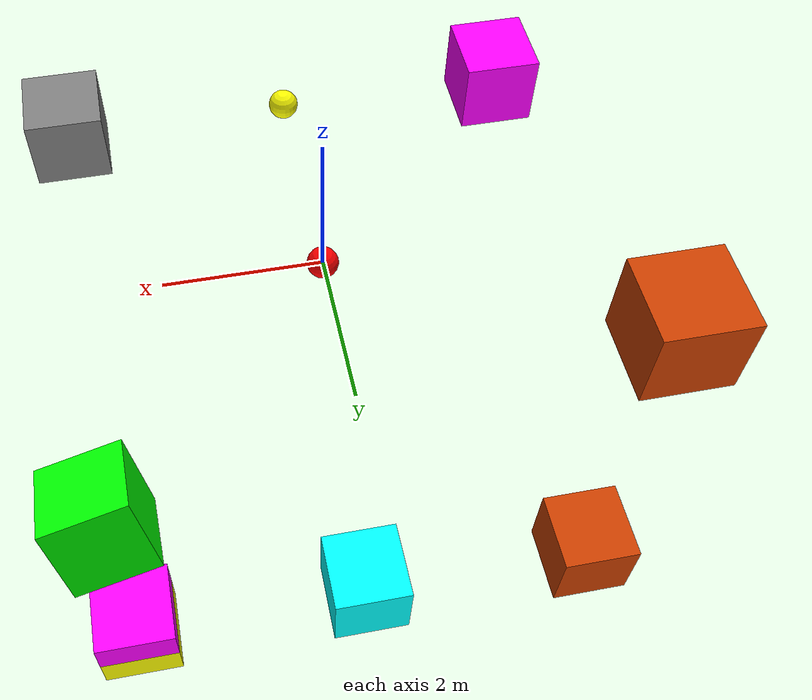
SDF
<sdf version="1.6">
 <world name="buoyancy">
  <physics name="1ms" type="ode">
   <max_step_size>0.001</max_step_size>
   <real_time_factor>1.0</real_time_factor>
  </physics>
  <plugin filename="gz-sim-physics-system" name="gz::sim::systems::Physics"/>
  <plugin filename="gz-sim-user-commands-system" name="gz::sim::systems::UserCommands"/>
  <plugin filename="gz-sim-scene-broadcaster-system" name="gz::sim::systems::SceneBroadcaster"/>
  <scene><ambient>1.0 1.0 1.0</ambient><background>0.8 0.8 0.8</background></scene>
  <light type="directional" name="sun">
   <pose>0 0 10 0 0 0</pose>
   <diffuse>1 1 1 1</diffuse>
   <specular>0.5 0.5 0.5 1</specular>
   <attenuation>
    <range>1000</range>
    <constant>0.9</constant>
    <linear>0.01</linear>
    <quadratic>0.001</quadratic>
   </attenuation>
   <direction>-0.5 0.1 -0.9</direction>
  </light>
  <model name="lighter_than_water">
   <model name="ball">
    <plugin filename="gz-waves1-hydrodynamics-system" name="gz::sim::systems::Hydrodynamics">
     <enable>lighter_than_water::ball</enable>
     <hydrodynamics>
      <damping_on>0</damping_on>
      <viscous_drag_on>0</viscous_drag_on>
      <pressure_drag_on>0</pressure_drag_on>
     </hydrodynamics>
    </plugin>
    <link name="body">
     <inertial>
      <mass>15</mass>
      <inertia><ixx>0.24</ixx><ixy>0</ixy><ixz>0</ixz><iyy>0.24</iyy><iyz>0</iyz><izz>0.24</izz></inertia>
     </inertial>
     <visual name="body_visual">
      <geometry><sphere><radius>0.2</radius></sphere></geometry>
      <material><ambient>1 0 0 1</ambient><diffuse>1 0 0 1</diffuse><specular>0.8 0.8 0.8 1</specular></material>
     </visual>
     <collision name="body_collision"><geometry><sphere><radius>0.2</radius></sphere></geometry></collision>
    </link>
   </model>
   <model name="box">
    <plugin filename="gz-waves1-hydrodynamics-system" name="gz::sim::systems::Hydrodynamics">
     <enable>lighter_than_water::box</enable>
     <hydrodynamics>
      <damping_on>0</damping_on>
      <viscous_drag_on>0</viscous_drag_on>
      <pressure_drag_on>0</pressure_drag_on>
     </hydrodynamics>
    </plugin>
    <pose>3 3 0 0.3 0.2 0.1</pose>
    <link name="body">
     <inertial>
      <mass>200</mass>
      <inertia><ixx>33.33</ixx><ixy>0</ixy><ixz>0</ixz><iyy>33.33</iyy><iyz>0</iyz><izz>33.33</izz></inertia>
     </inertial>
     <visual name="body_visual">
      <geometry><box><size>1 1 1</size></box></geometry>
      <material><ambient>0 1 0 1</ambient><diffuse>0 1 0 1</diffuse><specular>0.8 0.8 0.8 1</specular></material>
     </visual>
     <collision name="body_collision"><geometry><box><size>1 1 1</size></box></geometry></collision>
    </link>
   </model>
  </model>
  <model name="balloon_lighter_than_air">
   <plugin filename="gz-waves1-hydrodynamics-system" name="gz::sim::systems::Hydrodynamics">
    <enable>balloon_lighter_than_air::body</enable>
    <hydrodynamics>
     <damping_on>0</damping_on>
     <viscous_drag_on>0</viscous_drag_on>
     <pressure_drag_on>0</pressure_drag_on>
    </hydrodynamics>
   </plugin>
   <pose>0 -3 -0.1 0 0 0</pose>
   <link name="body">
    <inertial>
     <mass>0.1</mass>
     <inertia><ixx>0.0016</ixx><ixy>0</ixy><ixz>0</ixz><iyy>0.0016</iyy><iyz>0</iyz><izz>0.0016</izz></inertia>
    </inertial>
    <visual name="body_visual">
     <geometry><sphere><radius>0.2</radius></sphere></geometry>
     <material><ambient>1 1 0 1</ambient><diffuse>1 1 0 1</diffuse><specular>0.8 0.8 0.8 1</specular></material>
    </visual>
    <collision name="body_collision"><geometry><sphere><radius>0.2</radius></sphere></geometry></collision>
   </link>
  </model>
  <model name="box_neutral_buoyancy">
   <plugin filename="gz-waves1-hydrodynamics-system" name="gz::sim::systems::Hydrodynamics">
    <enable>box_neutral_buoyancy</enable>
    <hydrodynamics>
     <damping_on>0</damping_on>
     <viscous_drag_on>0</viscous_drag_on>
     <pressure_drag_on>0</pressure_drag_on>
    </hydrodynamics>
   </plugin>
   <pose>0 3 -3 0 0 0</pose>
   <link name="body">
    <inertial>
     <mass>998.6</mass>
     <pose>0 0 -0.1 0 0 0</pose>
     <inertia>
      <ixx>166.4333333</ixx>
      <ixy>0</ixy>
      <ixz>0</ixz>
      <iyy>166.4333333</iyy>
      <iyz>0</iyz>
      <izz>166.4333333</izz>
     </inertia>
    </inertial>
    <visual name="body_visual">
     <geometry><box><size>1 1 1</size></box></geometry>
     <material><ambient>0 1 1 1</ambient><diffuse>0 1 1 1</diffuse><specular>0.8 0.8 0.8 1</specular></material>
    </visual>
    <collision name="body_collision"><geometry><box><size>1 1 1</size></box></geometry></collision>
   </link>
  </model>
  <model name="box_neutral_buoyancy_collision_offset">
   <plugin filename="gz-waves1-hydrodynamics-system" name="gz::sim::systems::Hydrodynamics">
    <enable>box_neutral_buoyancy_collision_offset::body::buoyancy_volume</enable>
    <hydrodynamics>
     <damping_on>0</damping_on>
     <viscous_drag_on>0</viscous_drag_on>
     <pressure_drag_on>0</pressure_drag_on>
    </hydrodynamics>
   </plugin>
   <pose>-3 3 2 0 0 0</pose>
   <link name="body">
    <inertial>
     <mass>998.6</mass>
     <pose>0 0 -5.1 0 0 0</pose>
     <inertia>
      <ixx>166.4333333</ixx>
      <ixy>0</ixy>
      <ixz>0</ixz>
      <iyy>166.4333333</iyy>
      <iyz>0</iyz>
      <izz>166.4333333</izz>
     </inertia>
    </inertial>
    <visual name="link_origin">
     <geometry><box><size>1 1 1</size></box></geometry>
     <material>
      <ambient>0.8 0.25 0 1</ambient>
      <diffuse>0.8 0.25 0 1</diffuse>
      <specular>0.8 0.8 0.8 1</specular>
     </material>
    </visual>
    <visual name="collision_origin">
     <pose>0 0 -5 0 0 0</pose>
     <geometry><box><size>1 1 1</size></box></geometry>
     <material>
      <ambient>0.8 0.25 0 1</ambient>
      <diffuse>0.8 0.25 0 1</diffuse>
      <specular>0.8 0.8 0.8 1</specular>
     </material>
    </visual>
    <collision name="buoyancy_volume">
     <pose>0 0 -5 0 0 0</pose>
     <geometry><box><size>1 1 1</size></box></geometry>
    </collision>
   </link>
  </model>
  <model name="multi_collision_neutral_buoyancy">
   <plugin filename="gz-waves1-hydrodynamics-system" name="gz::sim::systems::Hydrodynamics">
    <enable>multi_collision_neutral_buoyancy::body::collision_2</enable>
    <hydrodynamics>
     <damping_on>0</damping_on>
     <viscous_drag_on>0</viscous_drag_on>
     <pressure_drag_on>0</pressure_drag_on>
    </hydrodynamics>
   </plugin>
   <pose>3 3 -3 0 0 0</pose>
   <link name="body">
    <inertial>
     <mass>499</mass>
     <pose>0 0 -0.1 0 0 0</pose>
     <inertia><ixx>83.2</ixx><ixy>0</ixy><ixz>0</ixz><iyy>83.2</iyy><iyz>0</iyz><izz>83.2</izz></inertia>
    </inertial>
    <visual name="collision_1_vis">
     <pose>0 0 -0.25 0 0 0</pose>
     <geometry><box><size>1 1 0.5</size></box></geometry>
     <material><ambient>1 1 0 1</ambient><diffuse>1 1 0 1</diffuse><specular>0.8 0.8 0.8 1</specular></material>
    </visual>
    <visual name="collision_2_vis">
     <pose>0 0 0.25 0 0 0</pose>
     <geometry><box><size>1 1 0.5</size></box></geometry>
     <material><ambient>1 0 1 1</ambient><diffuse>1 0 1 1</diffuse><specular>0.8 0.8 0.8 1</specular></material>
    </visual>
    <collision name="collision_1">
     <pose>0 0 -0.25 0 0 0</pose>
     <geometry><box><size>1 1 0.5</size></box></geometry>
    </collision>
    <collision name="collision_2">
     <pose>0 0 0.25 0 0 0</pose>
     <geometry><box><size>1 1 0.5</size></box></geometry>
    </collision>
   </link>
  </model>
  <model name="box_negative_buoyancy">
   <plugin filename="gz-waves1-hydrodynamics-system" name="gz::sim::systems::Hydrodynamics">
    <enable>box_negative_buoyancy</enable>
    <hydrodynamics>
     <damping_on>0</damping_on>
     <viscous_drag_on>0</viscous_drag_on>
     <pressure_drag_on>0</pressure_drag_on>
    </hydrodynamics>
   </plugin>
   <pose>-3 -3 0 0 0 0</pose>
   <link name="body">
    <inertial>
     <mass>998.6</mass>
     <pose>0 0 -0.1 0 0 0</pose>
     <inertia>
      <ixx>166.4333333</ixx>
      <ixy>0</ixy>
      <ixz>0</ixz>
      <iyy>166.4333333</iyy>
      <iyz>0</iyz>
      <izz>166.4333333</izz>
     </inertia>
    </inertial>
    <visual name="body_visual">
     <geometry><box><size>1 1 1</size></box></geometry>
     <material><ambient>1 0 1 1</ambient><diffuse>1 0 1 1</diffuse><specular>0.8 0.8 0.8 1</specular></material>
    </visual>
    <collision name="body_collision"><geometry><box><size>1 1 1</size></box></geometry></collision>
   </link>
  </model>
  <model name="box_no_buoyancy">
   <pose>3 -3 0 0 0 0</pose>
   <link name="body">
    <inertial>
     <mass>998.6</mass>
     <pose>0 0 -0.1 0 0 0</pose>
     <inertia>
      <ixx>166.4333333</ixx>
      <ixy>0</ixy>
      <ixz>0</ixz>
      <iyy>166.4333333</iyy>
      <iyz>0</iyz>
      <izz>166.4333333</izz>
     </inertia>
    </inertial>
    <visual name="body_visual">
     <geometry><box><size>1 1 1</size></box></geometry>
     <material>
      <ambient>0.5 0.5 0.5 1</ambient>
      <diffuse>0.5 0.5 0.5 1</diffuse>
      <specular>0.8 0.8 0.8 1</specular>
     </material>
    </visual>
    <collision name="body_collision"><geometry><box><size>1 1 1</size></box></geometry></collision>
   </link>
  </model>
 </world>
</sdf>
